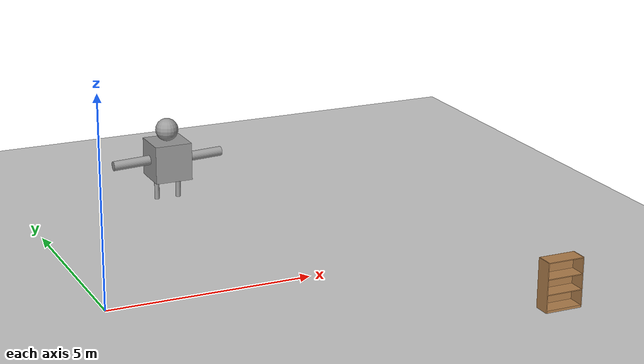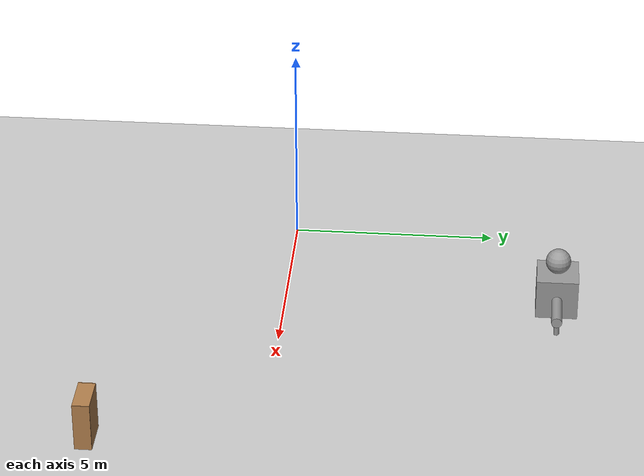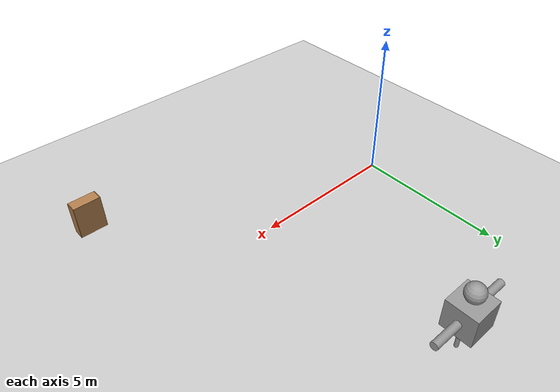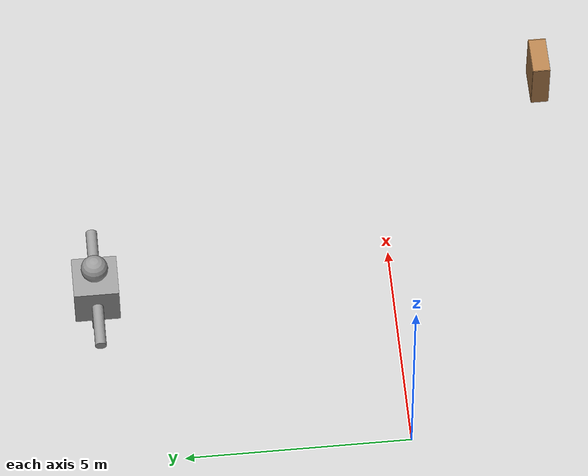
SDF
<sdf version="1.6">
 <world name="default">
  <model name="bookshelf">
   <static>1</static>
   <link name="link">
    <inertial><mass>1</mass></inertial>
    <collision name="back">
     <pose>0 0.005 0.6 0 -0 0</pose>
     <geometry><box><size>0.9 0.01 1.2</size></box></geometry>
    </collision>
    <visual name="visual1">
     <pose>0 0.005 0.6 0 -0 0</pose>
     <geometry><box><size>0.9 0.01 1.2</size></box></geometry>
     <material>
      <script><uri>file://media/materials/scripts/gazebo.material</uri><name>Gazebo/Wood</name></script>
     </material>
    </visual>
    <collision name="left_side">
     <pose>0.45 -0.195 0.6 0 -0 0</pose>
     <geometry><box><size>0.02 0.4 1.2</size></box></geometry>
    </collision>
    <visual name="visual2">
     <pose>0.45 -0.195 0.6 0 -0 0</pose>
     <geometry><box><size>0.02 0.4 1.2</size></box></geometry>
     <material>
      <script><uri>file://media/materials/scripts/gazebo.material</uri><name>Gazebo/Wood</name></script>
     </material>
    </visual>
    <collision name="right_side">
     <pose>-0.45 -0.195 0.6 0 -0 0</pose>
     <geometry><box><size>0.02 0.4 1.2</size></box></geometry>
    </collision>
    <visual name="visual3">
     <pose>-0.45 -0.195 0.6 0 -0 0</pose>
     <geometry><box><size>0.02 0.4 1.2</size></box></geometry>
     <material>
      <script><uri>file://media/materials/scripts/gazebo.material</uri><name>Gazebo/Wood</name></script>
     </material>
    </visual>
    <collision name="bottom">
     <pose>0 -0.195 0.03 0 -0 0</pose>
     <geometry><box><size>0.88 0.4 0.06</size></box></geometry>
    </collision>
    <visual name="visual4">
     <pose>0 -0.195 0.03 0 -0 0</pose>
     <geometry><box><size>0.88 0.4 0.06</size></box></geometry>
     <material>
      <script><uri>file://media/materials/scripts/gazebo.material</uri><name>Gazebo/Wood</name></script>
     </material>
    </visual>
    <collision name="top">
     <pose>0 -0.195 1.19 0 -0 0</pose>
     <geometry><box><size>0.88 0.4 0.02</size></box></geometry>
    </collision>
    <visual name="visual5">
     <pose>0 -0.195 1.19 0 -0 0</pose>
     <geometry><box><size>0.88 0.4 0.02</size></box></geometry>
     <material>
      <script><uri>file://media/materials/scripts/gazebo.material</uri><name>Gazebo/Wood</name></script>
     </material>
    </visual>
    <collision name="low_shelf">
     <pose>0 -0.195 0.43 0 -0 0</pose>
     <geometry><box><size>0.88 0.4 0.02</size></box></geometry>
    </collision>
    <visual name="visual6">
     <pose>0 -0.195 0.43 0 -0 0</pose>
     <geometry><box><size>0.88 0.4 0.02</size></box></geometry>
     <material>
      <script><uri>file://media/materials/scripts/gazebo.material</uri><name>Gazebo/Wood</name></script>
     </material>
    </visual>
    <collision name="high_shelf">
     <pose>0 -0.195 0.8 0 -0 0</pose>
     <geometry><box><size>0.88 0.4 0.02</size></box></geometry>
    </collision>
    <visual name="visual7">
     <pose>0 -0.195 0.8 0 -0 0</pose>
     <geometry><box><size>0.88 0.4 0.02</size></box></geometry>
     <material>
      <script><uri>file://media/materials/scripts/gazebo.material</uri><name>Gazebo/Wood</name></script>
     </material>
    </visual>
   </link>
   <pose>9.31281 -3.75165 0 0 -0 0</pose>
  </model>
  <model name="ground_plane">
   <static>1</static>
   <link name="link">
    <collision name="collision">
     <geometry><plane><normal>0 0 1</normal><size>100 100</size></plane></geometry>
     <surface><friction><ode><mu>100</mu><mu2>50</mu2></ode></friction></surface>
    </collision>
    <visual name="visual">
     <cast_shadows>0</cast_shadows>
     <geometry><plane><normal>0 0 1</normal><size>100 100</size></plane></geometry>
     <material>
      <script><uri>file://media/materials/scripts/gazebo.material</uri><name>Gazebo/Grey</name></script>
     </material>
    </visual>
   </link>
   <pose>-3.8747 13.4824 0 0 -0 0</pose>
  </model>
  <model name="first_model-edited_0">
   <link name="link_0">
    <pose>1.34948 -1.03796 -0.376734 0 -0 0</pose>
    <inertial>
     <mass>0.0094372</mass>
     <inertia>
      <ixx>0.00013078</ixx>
      <ixy>0</ixy>
      <ixz>0</ixz>
      <iyy>6.914e-05</iyy>
      <iyz>0</iyz>
      <izz>0.00018908</izz>
     </inertia>
    </inertial>
    <visual name="visual">
     <geometry><box><size>0.284636 0.399254 0.083044</size></box></geometry>
     <material>
      <lighting>1</lighting>
      <script><uri>file://media/materials/scripts/gazebo.material</uri><name>Gazebo/Grey</name></script>
      <shader type="pixel"><normal_map>__default__</normal_map></shader>
      <ambient>0.3 0.3 0.3 1</ambient>
      <diffuse>0.7 0.7 0.7 1</diffuse>
      <specular>0.01 0.01 0.01 1</specular>
      <emissive>0 0 0 1</emissive>
     </material>
    </visual>
    <collision name="collision">
     <geometry><box><size>0.284636 0.399254 0.083044</size></box></geometry>
     <surface>
      <friction>
       <ode><mu>1</mu><mu2>1</mu2><fdir1>0 0 0</fdir1><slip1>0</slip1><slip2>0</slip2></ode>
       <torsional>
        <coefficient>1</coefficient>
        <patch_radius>0</patch_radius>
        <surface_radius>0</surface_radius>
        <use_patch_radius>1</use_patch_radius>
        <ode><slip>0</slip></ode>
       </torsional>
      </friction>
      <bounce><restitution_coefficient>0</restitution_coefficient><threshold>1e+06</threshold></bounce>
      <contact>
       <collide_without_contact>0</collide_without_contact>
       <collide_without_contact_bitmask>1</collide_without_contact_bitmask>
       <collide_bitmask>1</collide_bitmask>
       <ode>
        <soft_cfm>0</soft_cfm>
        <soft_erp>0.2</soft_erp>
        <kp>1e+13</kp>
        <kd>1</kd>
        <max_vel>0.01</max_vel>
        <min_depth>0</min_depth>
       </ode>
       <bullet>
        <split_impulse>1</split_impulse>
        <split_impulse_penetration_threshold>-0.01</split_impulse_penetration_threshold>
        <soft_cfm>0</soft_cfm>
        <soft_erp>0.2</soft_erp>
        <kp>1e+13</kp>
        <kd>1</kd>
       </bullet>
      </contact>
     </surface>
    </collision>
   </link>
   <link name="link_0_clone">
    <pose>0.761524 -0.928795 -0.376734 0 -0 0</pose>
    <inertial>
     <mass>0.0094372</mass>
     <inertia>
      <ixx>0.00013078</ixx>
      <ixy>0</ixy>
      <ixz>0</ixz>
      <iyy>6.914e-05</iyy>
      <iyz>0</iyz>
      <izz>0.00018908</izz>
     </inertia>
    </inertial>
    <visual name="visual">
     <geometry><box><size>0.284636 0.399254 0.083044</size></box></geometry>
     <material>
      <lighting>1</lighting>
      <script><uri>file://media/materials/scripts/gazebo.material</uri><name>Gazebo/Grey</name></script>
      <shader type="pixel"><normal_map>__default__</normal_map></shader>
      <ambient>0.3 0.3 0.3 1</ambient>
      <diffuse>0.7 0.7 0.7 1</diffuse>
      <specular>0.01 0.01 0.01 1</specular>
      <emissive>0 0 0 1</emissive>
     </material>
    </visual>
    <collision name="collision">
     <geometry><box><size>0.284636 0.399254 0.083044</size></box></geometry>
     <surface>
      <friction>
       <ode><mu>1</mu><mu2>1</mu2><fdir1>0 0 0</fdir1><slip1>0</slip1><slip2>0</slip2></ode>
       <torsional>
        <coefficient>1</coefficient>
        <patch_radius>0</patch_radius>
        <surface_radius>0</surface_radius>
        <use_patch_radius>1</use_patch_radius>
        <ode><slip>0</slip></ode>
       </torsional>
      </friction>
      <bounce><restitution_coefficient>0</restitution_coefficient><threshold>1e+06</threshold></bounce>
      <contact>
       <collide_without_contact>0</collide_without_contact>
       <collide_without_contact_bitmask>1</collide_without_contact_bitmask>
       <collide_bitmask>1</collide_bitmask>
       <ode>
        <soft_cfm>0</soft_cfm>
        <soft_erp>0.2</soft_erp>
        <kp>1e+13</kp>
        <kd>1</kd>
        <max_vel>0.01</max_vel>
        <min_depth>0</min_depth>
       </ode>
       <bullet>
        <split_impulse>1</split_impulse>
        <split_impulse_penetration_threshold>-0.01</split_impulse_penetration_threshold>
        <soft_cfm>0</soft_cfm>
        <soft_erp>0.2</soft_erp>
        <kp>1e+13</kp>
        <kd>1</kd>
       </bullet>
      </contact>
     </surface>
    </collision>
   </link>
   <link name="link_1">
    <pose>0.763842 -0.869168 0.081744 0 -0 0</pose>
    <inertial>
     <mass>0.0171814</mass>
     <inertia>
      <ixx>0.00145024</ixx>
      <ixy>0</ixy>
      <ixz>0</ixz>
      <iyy>0.00145024</iyy>
      <iyz>0</iyz>
      <izz>3.69e-05</izz>
     </inertia>
    </inertial>
    <visual name="visual">
     <geometry><cylinder><radius>0.0655402</radius><length>1</length></cylinder></geometry>
     <material>
      <lighting>1</lighting>
      <script><uri>file://media/materials/scripts/gazebo.material</uri><name>Gazebo/Grey</name></script>
      <shader type="pixel"><normal_map>__default__</normal_map></shader>
      <ambient>0.3 0.3 0.3 1</ambient>
      <diffuse>0.7 0.7 0.7 1</diffuse>
      <specular>0.01 0.01 0.01 1</specular>
      <emissive>0 0 0 1</emissive>
     </material>
    </visual>
    <collision name="collision">
     <geometry><cylinder><radius>0.06554</radius><length>1</length></cylinder></geometry>
     <surface>
      <friction>
       <ode><mu>1</mu><mu2>1</mu2><fdir1>0 0 0</fdir1><slip1>0</slip1><slip2>0</slip2></ode>
       <torsional>
        <coefficient>1</coefficient>
        <patch_radius>0</patch_radius>
        <surface_radius>0</surface_radius>
        <use_patch_radius>1</use_patch_radius>
        <ode><slip>0</slip></ode>
       </torsional>
      </friction>
      <bounce><restitution_coefficient>0</restitution_coefficient><threshold>1e+06</threshold></bounce>
      <contact>
       <collide_without_contact>0</collide_without_contact>
       <collide_without_contact_bitmask>1</collide_without_contact_bitmask>
       <collide_bitmask>1</collide_bitmask>
       <ode>
        <soft_cfm>0</soft_cfm>
        <soft_erp>0.2</soft_erp>
        <kp>1e+13</kp>
        <kd>1</kd>
        <max_vel>0.01</max_vel>
        <min_depth>0</min_depth>
       </ode>
       <bullet>
        <split_impulse>1</split_impulse>
        <split_impulse_penetration_threshold>-0.01</split_impulse_penetration_threshold>
        <soft_cfm>0</soft_cfm>
        <soft_erp>0.2</soft_erp>
        <kp>1e+13</kp>
        <kd>1</kd>
       </bullet>
      </contact>
     </surface>
    </collision>
   </link>
   <link name="link_1_clone">
    <pose>1.34948 -0.903875 0.081744 0 -0 0</pose>
    <inertial>
     <mass>0.0171814</mass>
     <inertia>
      <ixx>0.00145024</ixx>
      <ixy>0</ixy>
      <ixz>0</ixz>
      <iyy>0.00145024</iyy>
      <iyz>0</iyz>
      <izz>3.69e-05</izz>
     </inertia>
    </inertial>
    <visual name="visual">
     <geometry><cylinder><radius>0.0655402</radius><length>1</length></cylinder></geometry>
     <material>
      <lighting>1</lighting>
      <script><uri>file://media/materials/scripts/gazebo.material</uri><name>Gazebo/Grey</name></script>
      <shader type="pixel"><normal_map>__default__</normal_map></shader>
      <ambient>0.3 0.3 0.3 1</ambient>
      <diffuse>0.7 0.7 0.7 1</diffuse>
      <specular>0.01 0.01 0.01 1</specular>
      <emissive>0 0 0 1</emissive>
     </material>
    </visual>
    <collision name="collision">
     <geometry><cylinder><radius>0.06554</radius><length>1</length></cylinder></geometry>
     <surface>
      <friction>
       <ode><mu>1</mu><mu2>1</mu2><fdir1>0 0 0</fdir1><slip1>0</slip1><slip2>0</slip2></ode>
       <torsional>
        <coefficient>1</coefficient>
        <patch_radius>0</patch_radius>
        <surface_radius>0</surface_radius>
        <use_patch_radius>1</use_patch_radius>
        <ode><slip>0</slip></ode>
       </torsional>
      </friction>
      <bounce><restitution_coefficient>0</restitution_coefficient><threshold>1e+06</threshold></bounce>
      <contact>
       <collide_without_contact>0</collide_without_contact>
       <collide_without_contact_bitmask>1</collide_without_contact_bitmask>
       <collide_bitmask>1</collide_bitmask>
       <ode>
        <soft_cfm>0</soft_cfm>
        <soft_erp>0.2</soft_erp>
        <kp>1e+13</kp>
        <kd>1</kd>
        <max_vel>0.01</max_vel>
        <min_depth>0</min_depth>
       </ode>
       <bullet>
        <split_impulse>1</split_impulse>
        <split_impulse_penetration_threshold>-0.01</split_impulse_penetration_threshold>
        <soft_cfm>0</soft_cfm>
        <soft_erp>0.2</soft_erp>
        <kp>1e+13</kp>
        <kd>1</kd>
       </bullet>
      </contact>
     </surface>
    </collision>
   </link>
   <link name="link_3">
    <pose>1.05896 -0.938686 1.08174 0 -0 0</pose>
    <inertial>
     <mass>1</mass>
     <inertia>
      <ixx>0.166667</ixx>
      <ixy>0</ixy>
      <ixz>0</ixz>
      <iyy>0.166667</iyy>
      <iyz>0</iyz>
      <izz>0.166667</izz>
     </inertia>
    </inertial>
    <visual name="visual">
     <geometry><box><size>1 1 1</size></box></geometry>
     <material>
      <lighting>1</lighting>
      <script><uri>file://media/materials/scripts/gazebo.material</uri><name>Gazebo/Grey</name></script>
      <shader type="pixel"><normal_map>__default__</normal_map></shader>
      <ambient>0.3 0.3 0.3 1</ambient>
      <diffuse>0.7 0.7 0.7 1</diffuse>
      <specular>0.01 0.01 0.01 1</specular>
      <emissive>0 0 0 1</emissive>
     </material>
    </visual>
    <collision name="collision">
     <geometry><box><size>1 1 1</size></box></geometry>
     <surface>
      <friction>
       <ode><mu>1</mu><mu2>1</mu2><fdir1>0 0 0</fdir1><slip1>0</slip1><slip2>0</slip2></ode>
       <torsional>
        <coefficient>1</coefficient>
        <patch_radius>0</patch_radius>
        <surface_radius>0</surface_radius>
        <use_patch_radius>1</use_patch_radius>
        <ode><slip>0</slip></ode>
       </torsional>
      </friction>
      <bounce><restitution_coefficient>0</restitution_coefficient><threshold>1e+06</threshold></bounce>
      <contact>
       <collide_without_contact>0</collide_without_contact>
       <collide_without_contact_bitmask>1</collide_without_contact_bitmask>
       <collide_bitmask>1</collide_bitmask>
       <ode>
        <soft_cfm>0</soft_cfm>
        <soft_erp>0.2</soft_erp>
        <kp>1e+13</kp>
        <kd>1</kd>
        <max_vel>0.01</max_vel>
        <min_depth>0</min_depth>
       </ode>
       <bullet>
        <split_impulse>1</split_impulse>
        <split_impulse_penetration_threshold>-0.01</split_impulse_penetration_threshold>
        <soft_cfm>0</soft_cfm>
        <soft_erp>0.2</soft_erp>
        <kp>1e+13</kp>
        <kd>1</kd>
       </bullet>
      </contact>
     </surface>
    </collision>
   </link>
   <link name="link_4">
    <pose>1.05896 -0.938686 1.88247 0 -0 0</pose>
    <inertial>
     <mass>0.217579</mass>
     <inertia>
      <ixx>0.00787095</ixx>
      <ixy>0</ixy>
      <ixz>0</ixz>
      <iyy>0.00787095</iyy>
      <iyz>0</iyz>
      <izz>0.00787095</izz>
     </inertia>
    </inertial>
    <visual name="visual">
     <geometry><sphere><radius>0.300729</radius></sphere></geometry>
     <material>
      <lighting>1</lighting>
      <script><uri>file://media/materials/scripts/gazebo.material</uri><name>Gazebo/Grey</name></script>
      <shader type="pixel"><normal_map>__default__</normal_map></shader>
      <ambient>0.3 0.3 0.3 1</ambient>
      <diffuse>0.7 0.7 0.7 1</diffuse>
      <specular>0.01 0.01 0.01 1</specular>
      <emissive>0 0 0 1</emissive>
     </material>
    </visual>
    <collision name="collision">
     <geometry><sphere><radius>0.300729</radius></sphere></geometry>
     <surface>
      <friction>
       <ode><mu>1</mu><mu2>1</mu2><fdir1>0 0 0</fdir1><slip1>0</slip1><slip2>0</slip2></ode>
       <torsional>
        <coefficient>1</coefficient>
        <patch_radius>0</patch_radius>
        <surface_radius>0</surface_radius>
        <use_patch_radius>1</use_patch_radius>
        <ode><slip>0</slip></ode>
       </torsional>
      </friction>
      <bounce><restitution_coefficient>0</restitution_coefficient><threshold>1e+06</threshold></bounce>
      <contact>
       <collide_without_contact>0</collide_without_contact>
       <collide_without_contact_bitmask>1</collide_without_contact_bitmask>
       <collide_bitmask>1</collide_bitmask>
       <ode>
        <soft_cfm>0</soft_cfm>
        <soft_erp>0.2</soft_erp>
        <kp>1e+13</kp>
        <kd>1</kd>
        <max_vel>0.01</max_vel>
        <min_depth>0</min_depth>
       </ode>
       <bullet>
        <split_impulse>1</split_impulse>
        <split_impulse_penetration_threshold>-0.01</split_impulse_penetration_threshold>
        <soft_cfm>0</soft_cfm>
        <soft_erp>0.2</soft_erp>
        <kp>1e+13</kp>
        <kd>1</kd>
       </bullet>
      </contact>
     </surface>
    </collision>
   </link>
   <link name="link_6">
    <pose>0.053462 -0.945873 1.08892 0 1.52826 0</pose>
    <inertial>
     <mass>0.0631262</mass>
     <inertia>
      <ixx>0.00550958</ixx>
      <ixy>0</ixy>
      <ixz>0</ixz>
      <iyy>0.00550958</iyy>
      <iyz>0</iyz>
      <izz>0.00049812</izz>
     </inertia>
    </inertial>
    <visual name="visual">
     <geometry><cylinder><radius>0.125625</radius><length>1</length></cylinder></geometry>
     <material>
      <lighting>1</lighting>
      <script><uri>file://media/materials/scripts/gazebo.material</uri><name>Gazebo/Grey</name></script>
      <shader type="pixel"><normal_map>__default__</normal_map></shader>
      <ambient>0.3 0.3 0.3 1</ambient>
      <diffuse>0.7 0.7 0.7 1</diffuse>
      <specular>0.01 0.01 0.01 1</specular>
      <emissive>0 0 0 1</emissive>
     </material>
    </visual>
    <collision name="collision">
     <geometry><cylinder><radius>0.125625</radius><length>1</length></cylinder></geometry>
     <surface>
      <friction>
       <ode><mu>1</mu><mu2>1</mu2><fdir1>0 0 0</fdir1><slip1>0</slip1><slip2>0</slip2></ode>
       <torsional>
        <coefficient>1</coefficient>
        <patch_radius>0</patch_radius>
        <surface_radius>0</surface_radius>
        <use_patch_radius>1</use_patch_radius>
        <ode><slip>0</slip></ode>
       </torsional>
      </friction>
      <bounce><restitution_coefficient>0</restitution_coefficient><threshold>1e+06</threshold></bounce>
      <contact>
       <collide_without_contact>0</collide_without_contact>
       <collide_without_contact_bitmask>1</collide_without_contact_bitmask>
       <collide_bitmask>1</collide_bitmask>
       <ode>
        <soft_cfm>0</soft_cfm>
        <soft_erp>0.2</soft_erp>
        <kp>1e+13</kp>
        <kd>1</kd>
        <max_vel>0.01</max_vel>
        <min_depth>0</min_depth>
       </ode>
       <bullet>
        <split_impulse>1</split_impulse>
        <split_impulse_penetration_threshold>-0.01</split_impulse_penetration_threshold>
        <soft_cfm>0</soft_cfm>
        <soft_erp>0.2</soft_erp>
        <kp>1e+13</kp>
        <kd>1</kd>
       </bullet>
      </contact>
     </surface>
    </collision>
   </link>
   <link name="link_6_clone">
    <pose>2.06385 -0.938686 1.08174 0 1.52826 0</pose>
    <inertial>
     <mass>0.0631262</mass>
     <inertia>
      <ixx>0.00550958</ixx>
      <ixy>0</ixy>
      <ixz>0</ixz>
      <iyy>0.00550958</iyy>
      <iyz>0</iyz>
      <izz>0.00049812</izz>
     </inertia>
    </inertial>
    <visual name="visual">
     <geometry><cylinder><radius>0.125625</radius><length>1</length></cylinder></geometry>
     <material>
      <lighting>1</lighting>
      <script><uri>file://media/materials/scripts/gazebo.material</uri><name>Gazebo/Grey</name></script>
      <shader type="pixel"><normal_map>__default__</normal_map></shader>
      <ambient>0.3 0.3 0.3 1</ambient>
      <diffuse>0.7 0.7 0.7 1</diffuse>
      <specular>0.01 0.01 0.01 1</specular>
      <emissive>0 0 0 1</emissive>
     </material>
    </visual>
    <collision name="collision">
     <geometry><cylinder><radius>0.125625</radius><length>1</length></cylinder></geometry>
     <surface>
      <friction>
       <ode><mu>1</mu><mu2>1</mu2><fdir1>0 0 0</fdir1><slip1>0</slip1><slip2>0</slip2></ode>
       <torsional>
        <coefficient>1</coefficient>
        <patch_radius>0</patch_radius>
        <surface_radius>0</surface_radius>
        <use_patch_radius>1</use_patch_radius>
        <ode><slip>0</slip></ode>
       </torsional>
      </friction>
      <bounce><restitution_coefficient>0</restitution_coefficient><threshold>1e+06</threshold></bounce>
      <contact>
       <collide_without_contact>0</collide_without_contact>
       <collide_without_contact_bitmask>1</collide_without_contact_bitmask>
       <collide_bitmask>1</collide_bitmask>
       <ode>
        <soft_cfm>0</soft_cfm>
        <soft_erp>0.2</soft_erp>
        <kp>1e+13</kp>
        <kd>1</kd>
        <max_vel>0.01</max_vel>
        <min_depth>0</min_depth>
       </ode>
       <bullet>
        <split_impulse>1</split_impulse>
        <split_impulse_penetration_threshold>-0.01</split_impulse_penetration_threshold>
        <soft_cfm>0</soft_cfm>
        <soft_erp>0.2</soft_erp>
        <kp>1e+13</kp>
        <kd>1</kd>
       </bullet>
      </contact>
     </surface>
    </collision>
   </link>
   <joint name="link_1_JOINT_1" type="fixed">
    <parent>link_1</parent>
    <child>link_0_clone</child>
    <physics>
     <ode><limit><cfm>0</cfm><erp>0.2</erp></limit><suspension><cfm>0</cfm><erp>0.2</erp></suspension></ode>
    </physics>
   </joint>
   <joint name="link_1_clone_JOINT_0" type="fixed">
    <parent>link_0_clone</parent>
    <child>link_0</child>
    <physics>
     <ode><limit><cfm>0</cfm><erp>0.2</erp></limit><suspension><cfm>0</cfm><erp>0.2</erp></suspension></ode>
    </physics>
   </joint>
   <joint name="link_1_clone_JOINT_3" type="fixed">
    <parent>link_1_clone</parent>
    <child>link_0</child>
    <physics>
     <ode><limit><cfm>0</cfm><erp>0.2</erp></limit><suspension><cfm>0</cfm><erp>0.2</erp></suspension></ode>
    </physics>
   </joint>
   <joint name="link_3_JOINT_6" type="fixed">
    <parent>link_3</parent>
    <child>link_1_clone</child>
    <physics>
     <ode><limit><cfm>0</cfm><erp>0.2</erp></limit><suspension><cfm>0</cfm><erp>0.2</erp></suspension></ode>
    </physics>
   </joint>
   <joint name="link_3_JOINT_7" type="fixed">
    <parent>link_3</parent>
    <child>link_1</child>
    <physics>
     <ode><limit><cfm>0</cfm><erp>0.2</erp></limit><suspension><cfm>0</cfm><erp>0.2</erp></suspension></ode>
    </physics>
   </joint>
   <joint name="link_4_JOINT_8" type="fixed">
    <parent>link_4</parent>
    <child>link_3</child>
    <physics>
     <ode><limit><cfm>0</cfm><erp>0.2</erp></limit><suspension><cfm>0</cfm><erp>0.2</erp></suspension></ode>
    </physics>
   </joint>
   <joint name="link_6_JOINT_11" type="fixed">
    <parent>link_6</parent>
    <child>link_3</child>
    <physics>
     <ode><limit><cfm>0</cfm><erp>0.2</erp></limit><suspension><cfm>0</cfm><erp>0.2</erp></suspension></ode>
    </physics>
   </joint>
   <joint name="link_6_clone_JOINT_12" type="fixed">
    <parent>link_6_clone</parent>
    <child>link_3</child>
    <physics>
     <ode><limit><cfm>0</cfm><erp>0.2</erp></limit><suspension><cfm>0</cfm><erp>0.2</erp></suspension></ode>
    </physics>
   </joint>
   <static>1</static>
   <pose>2.87379 7.5826 0 0 -0 0</pose>
  </model>
 </world>
</sdf>
